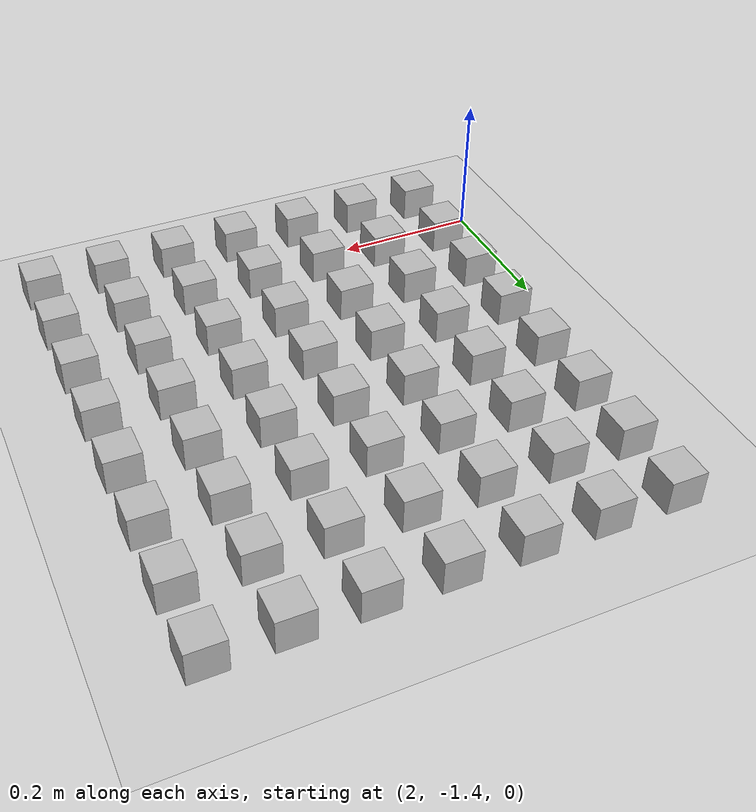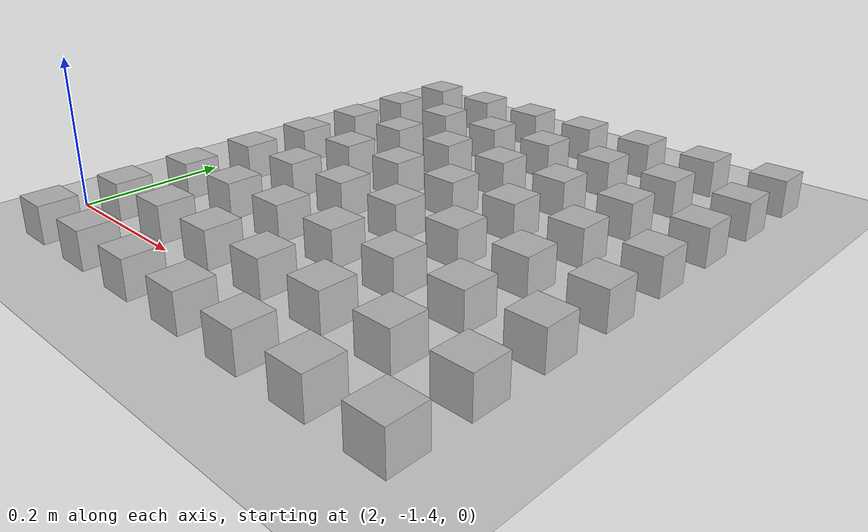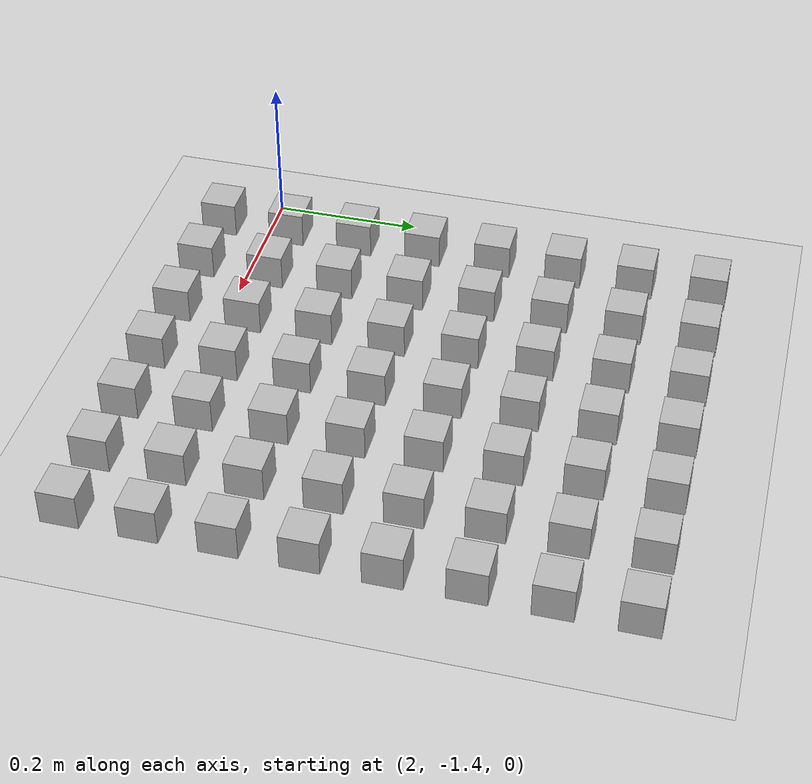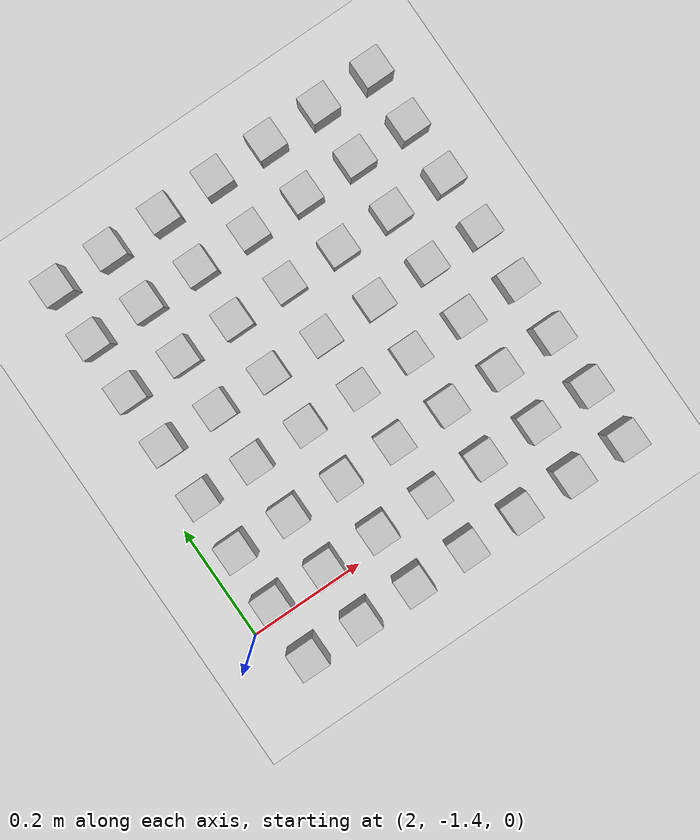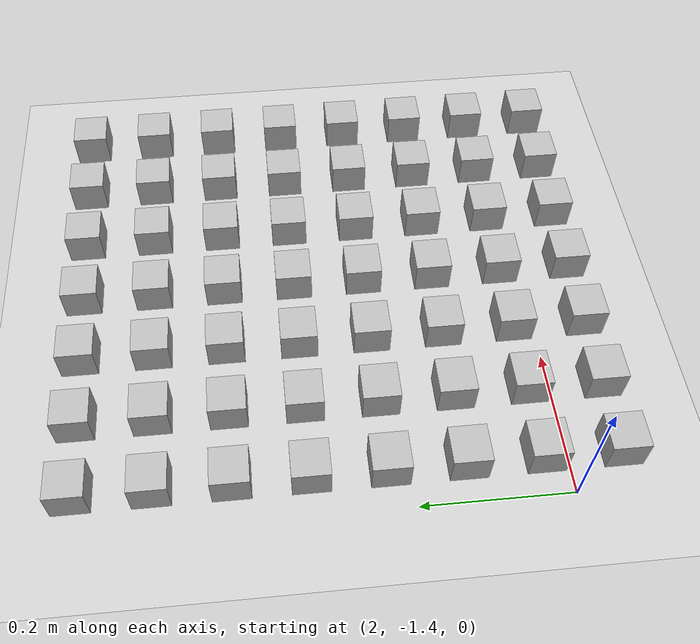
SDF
<sdf version="1.6">
 <world name="default">
  <model name="ground_plane">
   <static>1</static>
   <link name="link">
    <collision name="collision">
     <geometry><plane><normal>0 0 1</normal><size>100 100</size></plane></geometry>
     <surface><friction><ode><mu>100</mu><mu2>50</mu2></ode></friction></surface>
    </collision>
    <visual name="visual">
     <cast_shadows>0</cast_shadows>
     <geometry><plane><normal>0 0 1</normal><size>100 100</size></plane></geometry>
     <material>
      <script><uri>file://media/materials/scripts/gazebo.material</uri><name>Gazebo/Grey</name></script>
     </material>
    </visual>
   </link>
  </model>
  <model name="at257">
   <static>0</static>
   <link name="link">
    <inertial>
     <mass>0.01</mass>
     <inertia><ixx>4e-05</ixx><ixy>0</ixy><ixz>0</ixz><iyy>4e-05</iyy><iyz>0</iyz><izz>4e-05</izz></inertia>
    </inertial>
    <visual name="visual">
     <geometry><box><size>0.05 0.05 0.05</size></box></geometry>
     <material>
      <script>
       <uri>model://at0/materials/scripts</uri>
       <uri>model://at0/materials/textures</uri>
       <name>at0/Diffuse</name>
      </script>
     </material>
    </visual>
    <collision name="collision">
     <geometry><box><size>0.05 0.05 0.05</size></box></geometry>
     <surface><friction><ode><mu>0.8</mu><mu2>0.7</mu2></ode></friction></surface>
    </collision>
   </link>
   <pose>2.05559 -1.46923 0.025 0 -0 0</pose>
  </model>
  <model name="at258">
   <static>0</static>
   <link name="link">
    <inertial>
     <mass>0.01</mass>
     <inertia><ixx>4e-05</ixx><ixy>0</ixy><ixz>0</ixz><iyy>4e-05</iyy><iyz>0</iyz><izz>4e-05</izz></inertia>
    </inertial>
    <visual name="visual">
     <geometry><box><size>0.05 0.05 0.05</size></box></geometry>
     <material>
      <script>
       <uri>model://at0/materials/scripts</uri>
       <uri>model://at0/materials/textures</uri>
       <name>at0/Diffuse</name>
      </script>
     </material>
    </visual>
    <collision name="collision">
     <geometry><box><size>0.05 0.05 0.05</size></box></geometry>
     <surface><friction><ode><mu>0.8</mu><mu2>0.7</mu2></ode></friction></surface>
    </collision>
   </link>
   <pose>2.15559 -1.46923 0.025 0 -0 0</pose>
  </model>
  <model name="at259">
   <static>0</static>
   <link name="link">
    <inertial>
     <mass>0.01</mass>
     <inertia><ixx>4e-05</ixx><ixy>0</ixy><ixz>0</ixz><iyy>4e-05</iyy><iyz>0</iyz><izz>4e-05</izz></inertia>
    </inertial>
    <visual name="visual">
     <geometry><box><size>0.05 0.05 0.05</size></box></geometry>
     <material>
      <script>
       <uri>model://at0/materials/scripts</uri>
       <uri>model://at0/materials/textures</uri>
       <name>at0/Diffuse</name>
      </script>
     </material>
    </visual>
    <collision name="collision">
     <geometry><box><size>0.05 0.05 0.05</size></box></geometry>
     <surface><friction><ode><mu>0.8</mu><mu2>0.7</mu2></ode></friction></surface>
    </collision>
   </link>
   <pose>2.25559 -1.46923 0.025 0 -0 0</pose>
  </model>
  <model name="at260">
   <static>0</static>
   <link name="link">
    <inertial>
     <mass>0.01</mass>
     <inertia><ixx>4e-05</ixx><ixy>0</ixy><ixz>0</ixz><iyy>4e-05</iyy><iyz>0</iyz><izz>4e-05</izz></inertia>
    </inertial>
    <visual name="visual">
     <geometry><box><size>0.05 0.05 0.05</size></box></geometry>
     <material>
      <script>
       <uri>model://at0/materials/scripts</uri>
       <uri>model://at0/materials/textures</uri>
       <name>at0/Diffuse</name>
      </script>
     </material>
    </visual>
    <collision name="collision">
     <geometry><box><size>0.05 0.05 0.05</size></box></geometry>
     <surface><friction><ode><mu>0.8</mu><mu2>0.7</mu2></ode></friction></surface>
    </collision>
   </link>
   <pose>2.35559 -1.46923 0.025 0 -0 0</pose>
  </model>
  <model name="at261">
   <static>0</static>
   <link name="link">
    <inertial>
     <mass>0.01</mass>
     <inertia><ixx>4e-05</ixx><ixy>0</ixy><ixz>0</ixz><iyy>4e-05</iyy><iyz>0</iyz><izz>4e-05</izz></inertia>
    </inertial>
    <visual name="visual">
     <geometry><box><size>0.05 0.05 0.05</size></box></geometry>
     <material>
      <script>
       <uri>model://at0/materials/scripts</uri>
       <uri>model://at0/materials/textures</uri>
       <name>at0/Diffuse</name>
      </script>
     </material>
    </visual>
    <collision name="collision">
     <geometry><box><size>0.05 0.05 0.05</size></box></geometry>
     <surface><friction><ode><mu>0.8</mu><mu2>0.7</mu2></ode></friction></surface>
    </collision>
   </link>
   <pose>2.45559 -1.46923 0.025 0 -0 0</pose>
  </model>
  <model name="at262">
   <static>0</static>
   <link name="link">
    <inertial>
     <mass>0.01</mass>
     <inertia><ixx>4e-05</ixx><ixy>0</ixy><ixz>0</ixz><iyy>4e-05</iyy><iyz>0</iyz><izz>4e-05</izz></inertia>
    </inertial>
    <visual name="visual">
     <geometry><box><size>0.05 0.05 0.05</size></box></geometry>
     <material>
      <script>
       <uri>model://at0/materials/scripts</uri>
       <uri>model://at0/materials/textures</uri>
       <name>at0/Diffuse</name>
      </script>
     </material>
    </visual>
    <collision name="collision">
     <geometry><box><size>0.05 0.05 0.05</size></box></geometry>
     <surface><friction><ode><mu>0.8</mu><mu2>0.7</mu2></ode></friction></surface>
    </collision>
   </link>
   <pose>2.55559 -1.46923 0.025 0 -0 0</pose>
  </model>
  <model name="at263">
   <static>0</static>
   <link name="link">
    <inertial>
     <mass>0.01</mass>
     <inertia><ixx>4e-05</ixx><ixy>0</ixy><ixz>0</ixz><iyy>4e-05</iyy><iyz>0</iyz><izz>4e-05</izz></inertia>
    </inertial>
    <visual name="visual">
     <geometry><box><size>0.05 0.05 0.05</size></box></geometry>
     <material>
      <script>
       <uri>model://at0/materials/scripts</uri>
       <uri>model://at0/materials/textures</uri>
       <name>at0/Diffuse</name>
      </script>
     </material>
    </visual>
    <collision name="collision">
     <geometry><box><size>0.05 0.05 0.05</size></box></geometry>
     <surface><friction><ode><mu>0.8</mu><mu2>0.7</mu2></ode></friction></surface>
    </collision>
   </link>
   <pose>2.65559 -1.46923 0.025 0 -0 0</pose>
  </model>
  <model name="at265">
   <static>0</static>
   <link name="link">
    <inertial>
     <mass>0.01</mass>
     <inertia><ixx>4e-05</ixx><ixy>0</ixy><ixz>0</ixz><iyy>4e-05</iyy><iyz>0</iyz><izz>4e-05</izz></inertia>
    </inertial>
    <visual name="visual">
     <geometry><box><size>0.05 0.05 0.05</size></box></geometry>
     <material>
      <script>
       <uri>model://at0/materials/scripts</uri>
       <uri>model://at0/materials/textures</uri>
       <name>at0/Diffuse</name>
      </script>
     </material>
    </visual>
    <collision name="collision">
     <geometry><box><size>0.05 0.05 0.05</size></box></geometry>
     <surface><friction><ode><mu>0.8</mu><mu2>0.7</mu2></ode></friction></surface>
    </collision>
   </link>
   <pose>2.05559 -1.36923 0.025 0 -0 0</pose>
  </model>
  <model name="at266">
   <static>0</static>
   <link name="link">
    <inertial>
     <mass>0.01</mass>
     <inertia><ixx>4e-05</ixx><ixy>0</ixy><ixz>0</ixz><iyy>4e-05</iyy><iyz>0</iyz><izz>4e-05</izz></inertia>
    </inertial>
    <visual name="visual">
     <geometry><box><size>0.05 0.05 0.05</size></box></geometry>
     <material>
      <script>
       <uri>model://at0/materials/scripts</uri>
       <uri>model://at0/materials/textures</uri>
       <name>at0/Diffuse</name>
      </script>
     </material>
    </visual>
    <collision name="collision">
     <geometry><box><size>0.05 0.05 0.05</size></box></geometry>
     <surface><friction><ode><mu>0.8</mu><mu2>0.7</mu2></ode></friction></surface>
    </collision>
   </link>
   <pose>2.15559 -1.36923 0.025 0 -0 0</pose>
  </model>
  <model name="at267">
   <static>0</static>
   <link name="link">
    <inertial>
     <mass>0.01</mass>
     <inertia><ixx>4e-05</ixx><ixy>0</ixy><ixz>0</ixz><iyy>4e-05</iyy><iyz>0</iyz><izz>4e-05</izz></inertia>
    </inertial>
    <visual name="visual">
     <geometry><box><size>0.05 0.05 0.05</size></box></geometry>
     <material>
      <script>
       <uri>model://at0/materials/scripts</uri>
       <uri>model://at0/materials/textures</uri>
       <name>at0/Diffuse</name>
      </script>
     </material>
    </visual>
    <collision name="collision">
     <geometry><box><size>0.05 0.05 0.05</size></box></geometry>
     <surface><friction><ode><mu>0.8</mu><mu2>0.7</mu2></ode></friction></surface>
    </collision>
   </link>
   <pose>2.25559 -1.36923 0.025 0 -0 0</pose>
  </model>
  <model name="at268">
   <static>0</static>
   <link name="link">
    <inertial>
     <mass>0.01</mass>
     <inertia><ixx>4e-05</ixx><ixy>0</ixy><ixz>0</ixz><iyy>4e-05</iyy><iyz>0</iyz><izz>4e-05</izz></inertia>
    </inertial>
    <visual name="visual">
     <geometry><box><size>0.05 0.05 0.05</size></box></geometry>
     <material>
      <script>
       <uri>model://at0/materials/scripts</uri>
       <uri>model://at0/materials/textures</uri>
       <name>at0/Diffuse</name>
      </script>
     </material>
    </visual>
    <collision name="collision">
     <geometry><box><size>0.05 0.05 0.05</size></box></geometry>
     <surface><friction><ode><mu>0.8</mu><mu2>0.7</mu2></ode></friction></surface>
    </collision>
   </link>
   <pose>2.35559 -1.36923 0.025 0 -0 0</pose>
  </model>
  <model name="at269">
   <static>0</static>
   <link name="link">
    <inertial>
     <mass>0.01</mass>
     <inertia><ixx>4e-05</ixx><ixy>0</ixy><ixz>0</ixz><iyy>4e-05</iyy><iyz>0</iyz><izz>4e-05</izz></inertia>
    </inertial>
    <visual name="visual">
     <geometry><box><size>0.05 0.05 0.05</size></box></geometry>
     <material>
      <script>
       <uri>model://at0/materials/scripts</uri>
       <uri>model://at0/materials/textures</uri>
       <name>at0/Diffuse</name>
      </script>
     </material>
    </visual>
    <collision name="collision">
     <geometry><box><size>0.05 0.05 0.05</size></box></geometry>
     <surface><friction><ode><mu>0.8</mu><mu2>0.7</mu2></ode></friction></surface>
    </collision>
   </link>
   <pose>2.45559 -1.36923 0.025 0 -0 0</pose>
  </model>
  <model name="at270">
   <static>0</static>
   <link name="link">
    <inertial>
     <mass>0.01</mass>
     <inertia><ixx>4e-05</ixx><ixy>0</ixy><ixz>0</ixz><iyy>4e-05</iyy><iyz>0</iyz><izz>4e-05</izz></inertia>
    </inertial>
    <visual name="visual">
     <geometry><box><size>0.05 0.05 0.05</size></box></geometry>
     <material>
      <script>
       <uri>model://at0/materials/scripts</uri>
       <uri>model://at0/materials/textures</uri>
       <name>at0/Diffuse</name>
      </script>
     </material>
    </visual>
    <collision name="collision">
     <geometry><box><size>0.05 0.05 0.05</size></box></geometry>
     <surface><friction><ode><mu>0.8</mu><mu2>0.7</mu2></ode></friction></surface>
    </collision>
   </link>
   <pose>2.55559 -1.36923 0.025 0 -0 0</pose>
  </model>
  <model name="at271">
   <static>0</static>
   <link name="link">
    <inertial>
     <mass>0.01</mass>
     <inertia><ixx>4e-05</ixx><ixy>0</ixy><ixz>0</ixz><iyy>4e-05</iyy><iyz>0</iyz><izz>4e-05</izz></inertia>
    </inertial>
    <visual name="visual">
     <geometry><box><size>0.05 0.05 0.05</size></box></geometry>
     <material>
      <script>
       <uri>model://at0/materials/scripts</uri>
       <uri>model://at0/materials/textures</uri>
       <name>at0/Diffuse</name>
      </script>
     </material>
    </visual>
    <collision name="collision">
     <geometry><box><size>0.05 0.05 0.05</size></box></geometry>
     <surface><friction><ode><mu>0.8</mu><mu2>0.7</mu2></ode></friction></surface>
    </collision>
   </link>
   <pose>2.65559 -1.36923 0.025 0 -0 0</pose>
  </model>
  <model name="at273">
   <static>0</static>
   <link name="link">
    <inertial>
     <mass>0.01</mass>
     <inertia><ixx>4e-05</ixx><ixy>0</ixy><ixz>0</ixz><iyy>4e-05</iyy><iyz>0</iyz><izz>4e-05</izz></inertia>
    </inertial>
    <visual name="visual">
     <geometry><box><size>0.05 0.05 0.05</size></box></geometry>
     <material>
      <script>
       <uri>model://at0/materials/scripts</uri>
       <uri>model://at0/materials/textures</uri>
       <name>at0/Diffuse</name>
      </script>
     </material>
    </visual>
    <collision name="collision">
     <geometry><box><size>0.05 0.05 0.05</size></box></geometry>
     <surface><friction><ode><mu>0.8</mu><mu2>0.7</mu2></ode></friction></surface>
    </collision>
   </link>
   <pose>2.05559 -1.26923 0.025 0 -0 0</pose>
  </model>
  <model name="at274">
   <static>0</static>
   <link name="link">
    <inertial>
     <mass>0.01</mass>
     <inertia><ixx>4e-05</ixx><ixy>0</ixy><ixz>0</ixz><iyy>4e-05</iyy><iyz>0</iyz><izz>4e-05</izz></inertia>
    </inertial>
    <visual name="visual">
     <geometry><box><size>0.05 0.05 0.05</size></box></geometry>
     <material>
      <script>
       <uri>model://at0/materials/scripts</uri>
       <uri>model://at0/materials/textures</uri>
       <name>at0/Diffuse</name>
      </script>
     </material>
    </visual>
    <collision name="collision">
     <geometry><box><size>0.05 0.05 0.05</size></box></geometry>
     <surface><friction><ode><mu>0.8</mu><mu2>0.7</mu2></ode></friction></surface>
    </collision>
   </link>
   <pose>2.15559 -1.26923 0.025 0 -0 0</pose>
  </model>
  <model name="at275">
   <static>0</static>
   <link name="link">
    <inertial>
     <mass>0.01</mass>
     <inertia><ixx>4e-05</ixx><ixy>0</ixy><ixz>0</ixz><iyy>4e-05</iyy><iyz>0</iyz><izz>4e-05</izz></inertia>
    </inertial>
    <visual name="visual">
     <geometry><box><size>0.05 0.05 0.05</size></box></geometry>
     <material>
      <script>
       <uri>model://at0/materials/scripts</uri>
       <uri>model://at0/materials/textures</uri>
       <name>at0/Diffuse</name>
      </script>
     </material>
    </visual>
    <collision name="collision">
     <geometry><box><size>0.05 0.05 0.05</size></box></geometry>
     <surface><friction><ode><mu>0.8</mu><mu2>0.7</mu2></ode></friction></surface>
    </collision>
   </link>
   <pose>2.25559 -1.26923 0.025 0 -0 0</pose>
  </model>
  <model name="at276">
   <static>0</static>
   <link name="link">
    <inertial>
     <mass>0.01</mass>
     <inertia><ixx>4e-05</ixx><ixy>0</ixy><ixz>0</ixz><iyy>4e-05</iyy><iyz>0</iyz><izz>4e-05</izz></inertia>
    </inertial>
    <visual name="visual">
     <geometry><box><size>0.05 0.05 0.05</size></box></geometry>
     <material>
      <script>
       <uri>model://at0/materials/scripts</uri>
       <uri>model://at0/materials/textures</uri>
       <name>at0/Diffuse</name>
      </script>
     </material>
    </visual>
    <collision name="collision">
     <geometry><box><size>0.05 0.05 0.05</size></box></geometry>
     <surface><friction><ode><mu>0.8</mu><mu2>0.7</mu2></ode></friction></surface>
    </collision>
   </link>
   <pose>2.35559 -1.26923 0.025 0 -0 0</pose>
  </model>
  <model name="at277">
   <static>0</static>
   <link name="link">
    <inertial>
     <mass>0.01</mass>
     <inertia><ixx>4e-05</ixx><ixy>0</ixy><ixz>0</ixz><iyy>4e-05</iyy><iyz>0</iyz><izz>4e-05</izz></inertia>
    </inertial>
    <visual name="visual">
     <geometry><box><size>0.05 0.05 0.05</size></box></geometry>
     <material>
      <script>
       <uri>model://at0/materials/scripts</uri>
       <uri>model://at0/materials/textures</uri>
       <name>at0/Diffuse</name>
      </script>
     </material>
    </visual>
    <collision name="collision">
     <geometry><box><size>0.05 0.05 0.05</size></box></geometry>
     <surface><friction><ode><mu>0.8</mu><mu2>0.7</mu2></ode></friction></surface>
    </collision>
   </link>
   <pose>2.45559 -1.26923 0.025 0 -0 0</pose>
  </model>
  <model name="at278">
   <static>0</static>
   <link name="link">
    <inertial>
     <mass>0.01</mass>
     <inertia><ixx>4e-05</ixx><ixy>0</ixy><ixz>0</ixz><iyy>4e-05</iyy><iyz>0</iyz><izz>4e-05</izz></inertia>
    </inertial>
    <visual name="visual">
     <geometry><box><size>0.05 0.05 0.05</size></box></geometry>
     <material>
      <script>
       <uri>model://at0/materials/scripts</uri>
       <uri>model://at0/materials/textures</uri>
       <name>at0/Diffuse</name>
      </script>
     </material>
    </visual>
    <collision name="collision">
     <geometry><box><size>0.05 0.05 0.05</size></box></geometry>
     <surface><friction><ode><mu>0.8</mu><mu2>0.7</mu2></ode></friction></surface>
    </collision>
   </link>
   <pose>2.55559 -1.26923 0.025 0 -0 0</pose>
  </model>
  <model name="at279">
   <static>0</static>
   <link name="link">
    <inertial>
     <mass>0.01</mass>
     <inertia><ixx>4e-05</ixx><ixy>0</ixy><ixz>0</ixz><iyy>4e-05</iyy><iyz>0</iyz><izz>4e-05</izz></inertia>
    </inertial>
    <visual name="visual">
     <geometry><box><size>0.05 0.05 0.05</size></box></geometry>
     <material>
      <script>
       <uri>model://at0/materials/scripts</uri>
       <uri>model://at0/materials/textures</uri>
       <name>at0/Diffuse</name>
      </script>
     </material>
    </visual>
    <collision name="collision">
     <geometry><box><size>0.05 0.05 0.05</size></box></geometry>
     <surface><friction><ode><mu>0.8</mu><mu2>0.7</mu2></ode></friction></surface>
    </collision>
   </link>
   <pose>2.65559 -1.26923 0.025 0 -0 0</pose>
  </model>
  <model name="at281">
   <static>0</static>
   <link name="link">
    <inertial>
     <mass>0.01</mass>
     <inertia><ixx>4e-05</ixx><ixy>0</ixy><ixz>0</ixz><iyy>4e-05</iyy><iyz>0</iyz><izz>4e-05</izz></inertia>
    </inertial>
    <visual name="visual">
     <geometry><box><size>0.05 0.05 0.05</size></box></geometry>
     <material>
      <script>
       <uri>model://at0/materials/scripts</uri>
       <uri>model://at0/materials/textures</uri>
       <name>at0/Diffuse</name>
      </script>
     </material>
    </visual>
    <collision name="collision">
     <geometry><box><size>0.05 0.05 0.05</size></box></geometry>
     <surface><friction><ode><mu>0.8</mu><mu2>0.7</mu2></ode></friction></surface>
    </collision>
   </link>
   <pose>2.05559 -1.16923 0.025 0 -0 0</pose>
  </model>
  <model name="at282">
   <static>0</static>
   <link name="link">
    <inertial>
     <mass>0.01</mass>
     <inertia><ixx>4e-05</ixx><ixy>0</ixy><ixz>0</ixz><iyy>4e-05</iyy><iyz>0</iyz><izz>4e-05</izz></inertia>
    </inertial>
    <visual name="visual">
     <geometry><box><size>0.05 0.05 0.05</size></box></geometry>
     <material>
      <script>
       <uri>model://at0/materials/scripts</uri>
       <uri>model://at0/materials/textures</uri>
       <name>at0/Diffuse</name>
      </script>
     </material>
    </visual>
    <collision name="collision">
     <geometry><box><size>0.05 0.05 0.05</size></box></geometry>
     <surface><friction><ode><mu>0.8</mu><mu2>0.7</mu2></ode></friction></surface>
    </collision>
   </link>
   <pose>2.15559 -1.16923 0.025 0 -0 0</pose>
  </model>
  <model name="at283">
   <static>0</static>
   <link name="link">
    <inertial>
     <mass>0.01</mass>
     <inertia><ixx>4e-05</ixx><ixy>0</ixy><ixz>0</ixz><iyy>4e-05</iyy><iyz>0</iyz><izz>4e-05</izz></inertia>
    </inertial>
    <visual name="visual">
     <geometry><box><size>0.05 0.05 0.05</size></box></geometry>
     <material>
      <script>
       <uri>model://at0/materials/scripts</uri>
       <uri>model://at0/materials/textures</uri>
       <name>at0/Diffuse</name>
      </script>
     </material>
    </visual>
    <collision name="collision">
     <geometry><box><size>0.05 0.05 0.05</size></box></geometry>
     <surface><friction><ode><mu>0.8</mu><mu2>0.7</mu2></ode></friction></surface>
    </collision>
   </link>
   <pose>2.25559 -1.16923 0.025 0 -0 0</pose>
  </model>
  <model name="at284">
   <static>0</static>
   <link name="link">
    <inertial>
     <mass>0.01</mass>
     <inertia><ixx>4e-05</ixx><ixy>0</ixy><ixz>0</ixz><iyy>4e-05</iyy><iyz>0</iyz><izz>4e-05</izz></inertia>
    </inertial>
    <visual name="visual">
     <geometry><box><size>0.05 0.05 0.05</size></box></geometry>
     <material>
      <script>
       <uri>model://at0/materials/scripts</uri>
       <uri>model://at0/materials/textures</uri>
       <name>at0/Diffuse</name>
      </script>
     </material>
    </visual>
    <collision name="collision">
     <geometry><box><size>0.05 0.05 0.05</size></box></geometry>
     <surface><friction><ode><mu>0.8</mu><mu2>0.7</mu2></ode></friction></surface>
    </collision>
   </link>
   <pose>2.35559 -1.16923 0.025 0 -0 0</pose>
  </model>
  <model name="at285">
   <static>0</static>
   <link name="link">
    <inertial>
     <mass>0.01</mass>
     <inertia><ixx>4e-05</ixx><ixy>0</ixy><ixz>0</ixz><iyy>4e-05</iyy><iyz>0</iyz><izz>4e-05</izz></inertia>
    </inertial>
    <visual name="visual">
     <geometry><box><size>0.05 0.05 0.05</size></box></geometry>
     <material>
      <script>
       <uri>model://at0/materials/scripts</uri>
       <uri>model://at0/materials/textures</uri>
       <name>at0/Diffuse</name>
      </script>
     </material>
    </visual>
    <collision name="collision">
     <geometry><box><size>0.05 0.05 0.05</size></box></geometry>
     <surface><friction><ode><mu>0.8</mu><mu2>0.7</mu2></ode></friction></surface>
    </collision>
   </link>
   <pose>2.45559 -1.16923 0.025 0 -0 0</pose>
  </model>
  <model name="at286">
   <static>0</static>
   <link name="link">
    <inertial>
     <mass>0.01</mass>
     <inertia><ixx>4e-05</ixx><ixy>0</ixy><ixz>0</ixz><iyy>4e-05</iyy><iyz>0</iyz><izz>4e-05</izz></inertia>
    </inertial>
    <visual name="visual">
     <geometry><box><size>0.05 0.05 0.05</size></box></geometry>
     <material>
      <script>
       <uri>model://at0/materials/scripts</uri>
       <uri>model://at0/materials/textures</uri>
       <name>at0/Diffuse</name>
      </script>
     </material>
    </visual>
    <collision name="collision">
     <geometry><box><size>0.05 0.05 0.05</size></box></geometry>
     <surface><friction><ode><mu>0.8</mu><mu2>0.7</mu2></ode></friction></surface>
    </collision>
   </link>
   <pose>2.55559 -1.16923 0.025 0 -0 0</pose>
  </model>
  <model name="at287">
   <static>0</static>
   <link name="link">
    <inertial>
     <mass>0.01</mass>
     <inertia><ixx>4e-05</ixx><ixy>0</ixy><ixz>0</ixz><iyy>4e-05</iyy><iyz>0</iyz><izz>4e-05</izz></inertia>
    </inertial>
    <visual name="visual">
     <geometry><box><size>0.05 0.05 0.05</size></box></geometry>
     <material>
      <script>
       <uri>model://at0/materials/scripts</uri>
       <uri>model://at0/materials/textures</uri>
       <name>at0/Diffuse</name>
      </script>
     </material>
    </visual>
    <collision name="collision">
     <geometry><box><size>0.05 0.05 0.05</size></box></geometry>
     <surface><friction><ode><mu>0.8</mu><mu2>0.7</mu2></ode></friction></surface>
    </collision>
   </link>
   <pose>2.65559 -1.16923 0.025 0 -0 0</pose>
  </model>
  <model name="at289">
   <static>0</static>
   <link name="link">
    <inertial>
     <mass>0.01</mass>
     <inertia><ixx>4e-05</ixx><ixy>0</ixy><ixz>0</ixz><iyy>4e-05</iyy><iyz>0</iyz><izz>4e-05</izz></inertia>
    </inertial>
    <visual name="visual">
     <geometry><box><size>0.05 0.05 0.05</size></box></geometry>
     <material>
      <script>
       <uri>model://at0/materials/scripts</uri>
       <uri>model://at0/materials/textures</uri>
       <name>at0/Diffuse</name>
      </script>
     </material>
    </visual>
    <collision name="collision">
     <geometry><box><size>0.05 0.05 0.05</size></box></geometry>
     <surface><friction><ode><mu>0.8</mu><mu2>0.7</mu2></ode></friction></surface>
    </collision>
   </link>
   <pose>2.05559 -1.06923 0.025 0 -0 0</pose>
  </model>
  <model name="at290">
   <static>0</static>
   <link name="link">
    <inertial>
     <mass>0.01</mass>
     <inertia><ixx>4e-05</ixx><ixy>0</ixy><ixz>0</ixz><iyy>4e-05</iyy><iyz>0</iyz><izz>4e-05</izz></inertia>
    </inertial>
    <visual name="visual">
     <geometry><box><size>0.05 0.05 0.05</size></box></geometry>
     <material>
      <script>
       <uri>model://at0/materials/scripts</uri>
       <uri>model://at0/materials/textures</uri>
       <name>at0/Diffuse</name>
      </script>
     </material>
    </visual>
    <collision name="collision">
     <geometry><box><size>0.05 0.05 0.05</size></box></geometry>
     <surface><friction><ode><mu>0.8</mu><mu2>0.7</mu2></ode></friction></surface>
    </collision>
   </link>
   <pose>2.15559 -1.06923 0.025 0 -0 0</pose>
  </model>
  <model name="at291">
   <static>0</static>
   <link name="link">
    <inertial>
     <mass>0.01</mass>
     <inertia><ixx>4e-05</ixx><ixy>0</ixy><ixz>0</ixz><iyy>4e-05</iyy><iyz>0</iyz><izz>4e-05</izz></inertia>
    </inertial>
    <visual name="visual">
     <geometry><box><size>0.05 0.05 0.05</size></box></geometry>
     <material>
      <script>
       <uri>model://at0/materials/scripts</uri>
       <uri>model://at0/materials/textures</uri>
       <name>at0/Diffuse</name>
      </script>
     </material>
    </visual>
    <collision name="collision">
     <geometry><box><size>0.05 0.05 0.05</size></box></geometry>
     <surface><friction><ode><mu>0.8</mu><mu2>0.7</mu2></ode></friction></surface>
    </collision>
   </link>
   <pose>2.25559 -1.06923 0.025 0 -0 0</pose>
  </model>
  <model name="at292">
   <static>0</static>
   <link name="link">
    <inertial>
     <mass>0.01</mass>
     <inertia><ixx>4e-05</ixx><ixy>0</ixy><ixz>0</ixz><iyy>4e-05</iyy><iyz>0</iyz><izz>4e-05</izz></inertia>
    </inertial>
    <visual name="visual">
     <geometry><box><size>0.05 0.05 0.05</size></box></geometry>
     <material>
      <script>
       <uri>model://at0/materials/scripts</uri>
       <uri>model://at0/materials/textures</uri>
       <name>at0/Diffuse</name>
      </script>
     </material>
    </visual>
    <collision name="collision">
     <geometry><box><size>0.05 0.05 0.05</size></box></geometry>
     <surface><friction><ode><mu>0.8</mu><mu2>0.7</mu2></ode></friction></surface>
    </collision>
   </link>
   <pose>2.35559 -1.06923 0.025 0 -0 0</pose>
  </model>
  <model name="at293">
   <static>0</static>
   <link name="link">
    <inertial>
     <mass>0.01</mass>
     <inertia><ixx>4e-05</ixx><ixy>0</ixy><ixz>0</ixz><iyy>4e-05</iyy><iyz>0</iyz><izz>4e-05</izz></inertia>
    </inertial>
    <visual name="visual">
     <geometry><box><size>0.05 0.05 0.05</size></box></geometry>
     <material>
      <script>
       <uri>model://at0/materials/scripts</uri>
       <uri>model://at0/materials/textures</uri>
       <name>at0/Diffuse</name>
      </script>
     </material>
    </visual>
    <collision name="collision">
     <geometry><box><size>0.05 0.05 0.05</size></box></geometry>
     <surface><friction><ode><mu>0.8</mu><mu2>0.7</mu2></ode></friction></surface>
    </collision>
   </link>
   <pose>2.45559 -1.06923 0.025 0 -0 0</pose>
  </model>
  <model name="at294">
   <static>0</static>
   <link name="link">
    <inertial>
     <mass>0.01</mass>
     <inertia><ixx>4e-05</ixx><ixy>0</ixy><ixz>0</ixz><iyy>4e-05</iyy><iyz>0</iyz><izz>4e-05</izz></inertia>
    </inertial>
    <visual name="visual">
     <geometry><box><size>0.05 0.05 0.05</size></box></geometry>
     <material>
      <script>
       <uri>model://at0/materials/scripts</uri>
       <uri>model://at0/materials/textures</uri>
       <name>at0/Diffuse</name>
      </script>
     </material>
    </visual>
    <collision name="collision">
     <geometry><box><size>0.05 0.05 0.05</size></box></geometry>
     <surface><friction><ode><mu>0.8</mu><mu2>0.7</mu2></ode></friction></surface>
    </collision>
   </link>
   <pose>2.55559 -1.06923 0.025 0 -0 0</pose>
  </model>
  <model name="at295">
   <static>0</static>
   <link name="link">
    <inertial>
     <mass>0.01</mass>
     <inertia><ixx>4e-05</ixx><ixy>0</ixy><ixz>0</ixz><iyy>4e-05</iyy><iyz>0</iyz><izz>4e-05</izz></inertia>
    </inertial>
    <visual name="visual">
     <geometry><box><size>0.05 0.05 0.05</size></box></geometry>
     <material>
      <script>
       <uri>model://at0/materials/scripts</uri>
       <uri>model://at0/materials/textures</uri>
       <name>at0/Diffuse</name>
      </script>
     </material>
    </visual>
    <collision name="collision">
     <geometry><box><size>0.05 0.05 0.05</size></box></geometry>
     <surface><friction><ode><mu>0.8</mu><mu2>0.7</mu2></ode></friction></surface>
    </collision>
   </link>
   <pose>2.65559 -1.06923 0.025 0 -0 0</pose>
  </model>
  <model name="at297">
   <static>0</static>
   <link name="link">
    <inertial>
     <mass>0.01</mass>
     <inertia><ixx>4e-05</ixx><ixy>0</ixy><ixz>0</ixz><iyy>4e-05</iyy><iyz>0</iyz><izz>4e-05</izz></inertia>
    </inertial>
    <visual name="visual">
     <geometry><box><size>0.05 0.05 0.05</size></box></geometry>
     <material>
      <script>
       <uri>model://at0/materials/scripts</uri>
       <uri>model://at0/materials/textures</uri>
       <name>at0/Diffuse</name>
      </script>
     </material>
    </visual>
    <collision name="collision">
     <geometry><box><size>0.05 0.05 0.05</size></box></geometry>
     <surface><friction><ode><mu>0.8</mu><mu2>0.7</mu2></ode></friction></surface>
    </collision>
   </link>
   <pose>2.05559 -0.969227 0.025 0 -0 0</pose>
  </model>
  <model name="at298">
   <static>0</static>
   <link name="link">
    <inertial>
     <mass>0.01</mass>
     <inertia><ixx>4e-05</ixx><ixy>0</ixy><ixz>0</ixz><iyy>4e-05</iyy><iyz>0</iyz><izz>4e-05</izz></inertia>
    </inertial>
    <visual name="visual">
     <geometry><box><size>0.05 0.05 0.05</size></box></geometry>
     <material>
      <script>
       <uri>model://at0/materials/scripts</uri>
       <uri>model://at0/materials/textures</uri>
       <name>at0/Diffuse</name>
      </script>
     </material>
    </visual>
    <collision name="collision">
     <geometry><box><size>0.05 0.05 0.05</size></box></geometry>
     <surface><friction><ode><mu>0.8</mu><mu2>0.7</mu2></ode></friction></surface>
    </collision>
   </link>
   <pose>2.15559 -0.969227 0.025 0 -0 0</pose>
  </model>
  <model name="at299">
   <static>0</static>
   <link name="link">
    <inertial>
     <mass>0.01</mass>
     <inertia><ixx>4e-05</ixx><ixy>0</ixy><ixz>0</ixz><iyy>4e-05</iyy><iyz>0</iyz><izz>4e-05</izz></inertia>
    </inertial>
    <visual name="visual">
     <geometry><box><size>0.05 0.05 0.05</size></box></geometry>
     <material>
      <script>
       <uri>model://at0/materials/scripts</uri>
       <uri>model://at0/materials/textures</uri>
       <name>at0/Diffuse</name>
      </script>
     </material>
    </visual>
    <collision name="collision">
     <geometry><box><size>0.05 0.05 0.05</size></box></geometry>
     <surface><friction><ode><mu>0.8</mu><mu2>0.7</mu2></ode></friction></surface>
    </collision>
   </link>
   <pose>2.25559 -0.969227 0.025 0 -0 0</pose>
  </model>
  <model name="at300">
   <static>0</static>
   <link name="link">
    <inertial>
     <mass>0.01</mass>
     <inertia><ixx>4e-05</ixx><ixy>0</ixy><ixz>0</ixz><iyy>4e-05</iyy><iyz>0</iyz><izz>4e-05</izz></inertia>
    </inertial>
    <visual name="visual">
     <geometry><box><size>0.05 0.05 0.05</size></box></geometry>
     <material>
      <script>
       <uri>model://at0/materials/scripts</uri>
       <uri>model://at0/materials/textures</uri>
       <name>at0/Diffuse</name>
      </script>
     </material>
    </visual>
    <collision name="collision">
     <geometry><box><size>0.05 0.05 0.05</size></box></geometry>
     <surface><friction><ode><mu>0.8</mu><mu2>0.7</mu2></ode></friction></surface>
    </collision>
   </link>
   <pose>2.35559 -0.969227 0.025 0 -0 0</pose>
  </model>
  <model name="at301">
   <static>0</static>
   <link name="link">
    <inertial>
     <mass>0.01</mass>
     <inertia><ixx>4e-05</ixx><ixy>0</ixy><ixz>0</ixz><iyy>4e-05</iyy><iyz>0</iyz><izz>4e-05</izz></inertia>
    </inertial>
    <visual name="visual">
     <geometry><box><size>0.05 0.05 0.05</size></box></geometry>
     <material>
      <script>
       <uri>model://at0/materials/scripts</uri>
       <uri>model://at0/materials/textures</uri>
       <name>at0/Diffuse</name>
      </script>
     </material>
    </visual>
    <collision name="collision">
     <geometry><box><size>0.05 0.05 0.05</size></box></geometry>
     <surface><friction><ode><mu>0.8</mu><mu2>0.7</mu2></ode></friction></surface>
    </collision>
   </link>
   <pose>2.45559 -0.969227 0.025 0 -0 0</pose>
  </model>
  <model name="at302">
   <static>0</static>
   <link name="link">
    <inertial>
     <mass>0.01</mass>
     <inertia><ixx>4e-05</ixx><ixy>0</ixy><ixz>0</ixz><iyy>4e-05</iyy><iyz>0</iyz><izz>4e-05</izz></inertia>
    </inertial>
    <visual name="visual">
     <geometry><box><size>0.05 0.05 0.05</size></box></geometry>
     <material>
      <script>
       <uri>model://at0/materials/scripts</uri>
       <uri>model://at0/materials/textures</uri>
       <name>at0/Diffuse</name>
      </script>
     </material>
    </visual>
    <collision name="collision">
     <geometry><box><size>0.05 0.05 0.05</size></box></geometry>
     <surface><friction><ode><mu>0.8</mu><mu2>0.7</mu2></ode></friction></surface>
    </collision>
   </link>
   <pose>2.55559 -0.969227 0.025 0 -0 0</pose>
  </model>
  <model name="at303">
   <static>0</static>
   <link name="link">
    <inertial>
     <mass>0.01</mass>
     <inertia><ixx>4e-05</ixx><ixy>0</ixy><ixz>0</ixz><iyy>4e-05</iyy><iyz>0</iyz><izz>4e-05</izz></inertia>
    </inertial>
    <visual name="visual">
     <geometry><box><size>0.05 0.05 0.05</size></box></geometry>
     <material>
      <script>
       <uri>model://at0/materials/scripts</uri>
       <uri>model://at0/materials/textures</uri>
       <name>at0/Diffuse</name>
      </script>
     </material>
    </visual>
    <collision name="collision">
     <geometry><box><size>0.05 0.05 0.05</size></box></geometry>
     <surface><friction><ode><mu>0.8</mu><mu2>0.7</mu2></ode></friction></surface>
    </collision>
   </link>
   <pose>2.65559 -0.969227 0.025 0 -0 0</pose>
  </model>
  <model name="at305">
   <static>0</static>
   <link name="link">
    <inertial>
     <mass>0.01</mass>
     <inertia><ixx>4e-05</ixx><ixy>0</ixy><ixz>0</ixz><iyy>4e-05</iyy><iyz>0</iyz><izz>4e-05</izz></inertia>
    </inertial>
    <visual name="visual">
     <geometry><box><size>0.05 0.05 0.05</size></box></geometry>
     <material>
      <script>
       <uri>model://at0/materials/scripts</uri>
       <uri>model://at0/materials/textures</uri>
       <name>at0/Diffuse</name>
      </script>
     </material>
    </visual>
    <collision name="collision">
     <geometry><box><size>0.05 0.05 0.05</size></box></geometry>
     <surface><friction><ode><mu>0.8</mu><mu2>0.7</mu2></ode></friction></surface>
    </collision>
   </link>
   <pose>2.05559 -0.869227 0.025 0 -0 0</pose>
  </model>
  <model name="at306">
   <static>0</static>
   <link name="link">
    <inertial>
     <mass>0.01</mass>
     <inertia><ixx>4e-05</ixx><ixy>0</ixy><ixz>0</ixz><iyy>4e-05</iyy><iyz>0</iyz><izz>4e-05</izz></inertia>
    </inertial>
    <visual name="visual">
     <geometry><box><size>0.05 0.05 0.05</size></box></geometry>
     <material>
      <script>
       <uri>model://at0/materials/scripts</uri>
       <uri>model://at0/materials/textures</uri>
       <name>at0/Diffuse</name>
      </script>
     </material>
    </visual>
    <collision name="collision">
     <geometry><box><size>0.05 0.05 0.05</size></box></geometry>
     <surface><friction><ode><mu>0.8</mu><mu2>0.7</mu2></ode></friction></surface>
    </collision>
   </link>
   <pose>2.15559 -0.869227 0.025 0 -0 0</pose>
  </model>
  <model name="at307">
   <static>0</static>
   <link name="link">
    <inertial>
     <mass>0.01</mass>
     <inertia><ixx>4e-05</ixx><ixy>0</ixy><ixz>0</ixz><iyy>4e-05</iyy><iyz>0</iyz><izz>4e-05</izz></inertia>
    </inertial>
    <visual name="visual">
     <geometry><box><size>0.05 0.05 0.05</size></box></geometry>
     <material>
      <script>
       <uri>model://at0/materials/scripts</uri>
       <uri>model://at0/materials/textures</uri>
       <name>at0/Diffuse</name>
      </script>
     </material>
    </visual>
    <collision name="collision">
     <geometry><box><size>0.05 0.05 0.05</size></box></geometry>
     <surface><friction><ode><mu>0.8</mu><mu2>0.7</mu2></ode></friction></surface>
    </collision>
   </link>
   <pose>2.25559 -0.869227 0.025 0 -0 0</pose>
  </model>
  <model name="at308">
   <static>0</static>
   <link name="link">
    <inertial>
     <mass>0.01</mass>
     <inertia><ixx>4e-05</ixx><ixy>0</ixy><ixz>0</ixz><iyy>4e-05</iyy><iyz>0</iyz><izz>4e-05</izz></inertia>
    </inertial>
    <visual name="visual">
     <geometry><box><size>0.05 0.05 0.05</size></box></geometry>
     <material>
      <script>
       <uri>model://at0/materials/scripts</uri>
       <uri>model://at0/materials/textures</uri>
       <name>at0/Diffuse</name>
      </script>
     </material>
    </visual>
    <collision name="collision">
     <geometry><box><size>0.05 0.05 0.05</size></box></geometry>
     <surface><friction><ode><mu>0.8</mu><mu2>0.7</mu2></ode></friction></surface>
    </collision>
   </link>
   <pose>2.35559 -0.869227 0.025 0 -0 0</pose>
  </model>
  <model name="at309">
   <static>0</static>
   <link name="link">
    <inertial>
     <mass>0.01</mass>
     <inertia><ixx>4e-05</ixx><ixy>0</ixy><ixz>0</ixz><iyy>4e-05</iyy><iyz>0</iyz><izz>4e-05</izz></inertia>
    </inertial>
    <visual name="visual">
     <geometry><box><size>0.05 0.05 0.05</size></box></geometry>
     <material>
      <script>
       <uri>model://at0/materials/scripts</uri>
       <uri>model://at0/materials/textures</uri>
       <name>at0/Diffuse</name>
      </script>
     </material>
    </visual>
    <collision name="collision">
     <geometry><box><size>0.05 0.05 0.05</size></box></geometry>
     <surface><friction><ode><mu>0.8</mu><mu2>0.7</mu2></ode></friction></surface>
    </collision>
   </link>
   <pose>2.45559 -0.869227 0.025 0 -0 0</pose>
  </model>
  <model name="at310">
   <static>0</static>
   <link name="link">
    <inertial>
     <mass>0.01</mass>
     <inertia><ixx>4e-05</ixx><ixy>0</ixy><ixz>0</ixz><iyy>4e-05</iyy><iyz>0</iyz><izz>4e-05</izz></inertia>
    </inertial>
    <visual name="visual">
     <geometry><box><size>0.05 0.05 0.05</size></box></geometry>
     <material>
      <script>
       <uri>model://at0/materials/scripts</uri>
       <uri>model://at0/materials/textures</uri>
       <name>at0/Diffuse</name>
      </script>
     </material>
    </visual>
    <collision name="collision">
     <geometry><box><size>0.05 0.05 0.05</size></box></geometry>
     <surface><friction><ode><mu>0.8</mu><mu2>0.7</mu2></ode></friction></surface>
    </collision>
   </link>
   <pose>2.55559 -0.869227 0.025 0 -0 0</pose>
  </model>
  <model name="at311">
   <static>0</static>
   <link name="link">
    <inertial>
     <mass>0.01</mass>
     <inertia><ixx>4e-05</ixx><ixy>0</ixy><ixz>0</ixz><iyy>4e-05</iyy><iyz>0</iyz><izz>4e-05</izz></inertia>
    </inertial>
    <visual name="visual">
     <geometry><box><size>0.05 0.05 0.05</size></box></geometry>
     <material>
      <script>
       <uri>model://at0/materials/scripts</uri>
       <uri>model://at0/materials/textures</uri>
       <name>at0/Diffuse</name>
      </script>
     </material>
    </visual>
    <collision name="collision">
     <geometry><box><size>0.05 0.05 0.05</size></box></geometry>
     <surface><friction><ode><mu>0.8</mu><mu2>0.7</mu2></ode></friction></surface>
    </collision>
   </link>
   <pose>2.65559 -0.869227 0.025 0 -0 0</pose>
  </model>
  <model name="at313">
   <static>0</static>
   <link name="link">
    <inertial>
     <mass>0.01</mass>
     <inertia><ixx>4e-05</ixx><ixy>0</ixy><ixz>0</ixz><iyy>4e-05</iyy><iyz>0</iyz><izz>4e-05</izz></inertia>
    </inertial>
    <visual name="visual">
     <geometry><box><size>0.05 0.05 0.05</size></box></geometry>
     <material>
      <script>
       <uri>model://at0/materials/scripts</uri>
       <uri>model://at0/materials/textures</uri>
       <name>at0/Diffuse</name>
      </script>
     </material>
    </visual>
    <collision name="collision">
     <geometry><box><size>0.05 0.05 0.05</size></box></geometry>
     <surface><friction><ode><mu>0.8</mu><mu2>0.7</mu2></ode></friction></surface>
    </collision>
   </link>
   <pose>2.05559 -0.769227 0.025 0 -0 0</pose>
  </model>
  <model name="at314">
   <static>0</static>
   <link name="link">
    <inertial>
     <mass>0.01</mass>
     <inertia><ixx>4e-05</ixx><ixy>0</ixy><ixz>0</ixz><iyy>4e-05</iyy><iyz>0</iyz><izz>4e-05</izz></inertia>
    </inertial>
    <visual name="visual">
     <geometry><box><size>0.05 0.05 0.05</size></box></geometry>
     <material>
      <script>
       <uri>model://at0/materials/scripts</uri>
       <uri>model://at0/materials/textures</uri>
       <name>at0/Diffuse</name>
      </script>
     </material>
    </visual>
    <collision name="collision">
     <geometry><box><size>0.05 0.05 0.05</size></box></geometry>
     <surface><friction><ode><mu>0.8</mu><mu2>0.7</mu2></ode></friction></surface>
    </collision>
   </link>
   <pose>2.15559 -0.769227 0.025 0 -0 0</pose>
  </model>
  <model name="at315">
   <static>0</static>
   <link name="link">
    <inertial>
     <mass>0.01</mass>
     <inertia><ixx>4e-05</ixx><ixy>0</ixy><ixz>0</ixz><iyy>4e-05</iyy><iyz>0</iyz><izz>4e-05</izz></inertia>
    </inertial>
    <visual name="visual">
     <geometry><box><size>0.05 0.05 0.05</size></box></geometry>
     <material>
      <script>
       <uri>model://at0/materials/scripts</uri>
       <uri>model://at0/materials/textures</uri>
       <name>at0/Diffuse</name>
      </script>
     </material>
    </visual>
    <collision name="collision">
     <geometry><box><size>0.05 0.05 0.05</size></box></geometry>
     <surface><friction><ode><mu>0.8</mu><mu2>0.7</mu2></ode></friction></surface>
    </collision>
   </link>
   <pose>2.25559 -0.769227 0.025 0 -0 0</pose>
  </model>
  <model name="at316">
   <static>0</static>
   <link name="link">
    <inertial>
     <mass>0.01</mass>
     <inertia><ixx>4e-05</ixx><ixy>0</ixy><ixz>0</ixz><iyy>4e-05</iyy><iyz>0</iyz><izz>4e-05</izz></inertia>
    </inertial>
    <visual name="visual">
     <geometry><box><size>0.05 0.05 0.05</size></box></geometry>
     <material>
      <script>
       <uri>model://at0/materials/scripts</uri>
       <uri>model://at0/materials/textures</uri>
       <name>at0/Diffuse</name>
      </script>
     </material>
    </visual>
    <collision name="collision">
     <geometry><box><size>0.05 0.05 0.05</size></box></geometry>
     <surface><friction><ode><mu>0.8</mu><mu2>0.7</mu2></ode></friction></surface>
    </collision>
   </link>
   <pose>2.35559 -0.769227 0.025 0 -0 0</pose>
  </model>
  <model name="at317">
   <static>0</static>
   <link name="link">
    <inertial>
     <mass>0.01</mass>
     <inertia><ixx>4e-05</ixx><ixy>0</ixy><ixz>0</ixz><iyy>4e-05</iyy><iyz>0</iyz><izz>4e-05</izz></inertia>
    </inertial>
    <visual name="visual">
     <geometry><box><size>0.05 0.05 0.05</size></box></geometry>
     <material>
      <script>
       <uri>model://at0/materials/scripts</uri>
       <uri>model://at0/materials/textures</uri>
       <name>at0/Diffuse</name>
      </script>
     </material>
    </visual>
    <collision name="collision">
     <geometry><box><size>0.05 0.05 0.05</size></box></geometry>
     <surface><friction><ode><mu>0.8</mu><mu2>0.7</mu2></ode></friction></surface>
    </collision>
   </link>
   <pose>2.45559 -0.769227 0.025 0 -0 0</pose>
  </model>
  <model name="at318">
   <static>0</static>
   <link name="link">
    <inertial>
     <mass>0.01</mass>
     <inertia><ixx>4e-05</ixx><ixy>0</ixy><ixz>0</ixz><iyy>4e-05</iyy><iyz>0</iyz><izz>4e-05</izz></inertia>
    </inertial>
    <visual name="visual">
     <geometry><box><size>0.05 0.05 0.05</size></box></geometry>
     <material>
      <script>
       <uri>model://at0/materials/scripts</uri>
       <uri>model://at0/materials/textures</uri>
       <name>at0/Diffuse</name>
      </script>
     </material>
    </visual>
    <collision name="collision">
     <geometry><box><size>0.05 0.05 0.05</size></box></geometry>
     <surface><friction><ode><mu>0.8</mu><mu2>0.7</mu2></ode></friction></surface>
    </collision>
   </link>
   <pose>2.55559 -0.769227 0.025 0 -0 0</pose>
  </model>
  <model name="at319">
   <static>0</static>
   <link name="link">
    <inertial>
     <mass>0.01</mass>
     <inertia><ixx>4e-05</ixx><ixy>0</ixy><ixz>0</ixz><iyy>4e-05</iyy><iyz>0</iyz><izz>4e-05</izz></inertia>
    </inertial>
    <visual name="visual">
     <geometry><box><size>0.05 0.05 0.05</size></box></geometry>
     <material>
      <script>
       <uri>model://at0/materials/scripts</uri>
       <uri>model://at0/materials/textures</uri>
       <name>at0/Diffuse</name>
      </script>
     </material>
    </visual>
    <collision name="collision">
     <geometry><box><size>0.05 0.05 0.05</size></box></geometry>
     <surface><friction><ode><mu>0.8</mu><mu2>0.7</mu2></ode></friction></surface>
    </collision>
   </link>
   <pose>2.65559 -0.769227 0.025 0 -0 0</pose>
  </model>
 </world>
</sdf>
